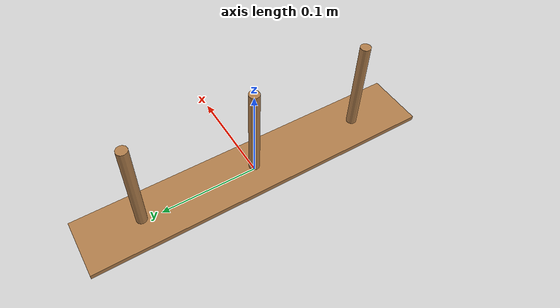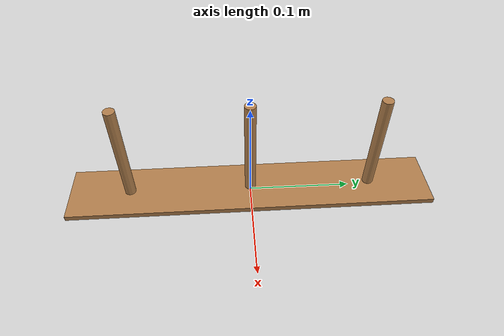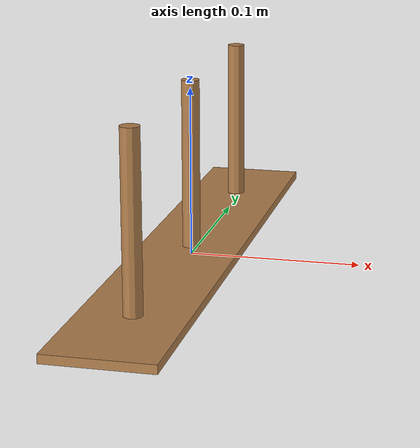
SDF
<sdf version='1.6'>
  <model name='hanoi_board'>
  <static>0</static>
    <link name='towers_of_hanoi_board_base_link'>
      <pose frame=''>0 0 0 0 -0 0</pose>
      <inertial>
        <pose frame=''>0 0 0 0 -0 0</pose>
        <mass>100</mass>
        <inertia>
          <ixx>100</ixx>
          <ixy>0</ixy>
          <ixz>0</ixz>
          <iyy>100</iyy>
          <iyz>0</iyz>
          <izz>100</izz>
        </inertia>
      </inertial>
      <collision name='towers_of_hanoi_board_base_link_collision'>
        <pose frame=''>0 0 0 0 -0 0</pose>
        <geometry>
          <mesh>
            <scale>1.2 1.2 1</scale>
            <uri>model://hanoi_board/meshes/hanoi-board.stl</uri>
          </mesh>
        </geometry>
        <surface>
          <contact>
            <ode/>
          </contact>
          <friction>
            <ode/>
          </friction>
        </surface>
      </collision>
      <visual name='towers_of_hanoi_board_base_link_visual'>
        <pose frame=''>0 0 0 0 -0 0</pose>
        <geometry>
          <mesh>
            <scale>1 1 1</scale>
            <uri>model://hanoi_board/meshes/hanoi-board.dae</uri>
          </mesh>
        </geometry>
        <material>
          <script>
            <name>Gazebo/Wood</name>
            <uri>file://media/materials/scripts/gazebo.material</uri>
          </script>
        </material>
      </visual>
      <gravity>1</gravity>
      <velocity_decay/>
    </link>
    <joint name='world_towers_of_hanoi_board_joint' type='fixed'>
      <child>towers_of_hanoi_board_base_link</child>
      <parent>world</parent>
    </joint>
  </model>
</sdf>
